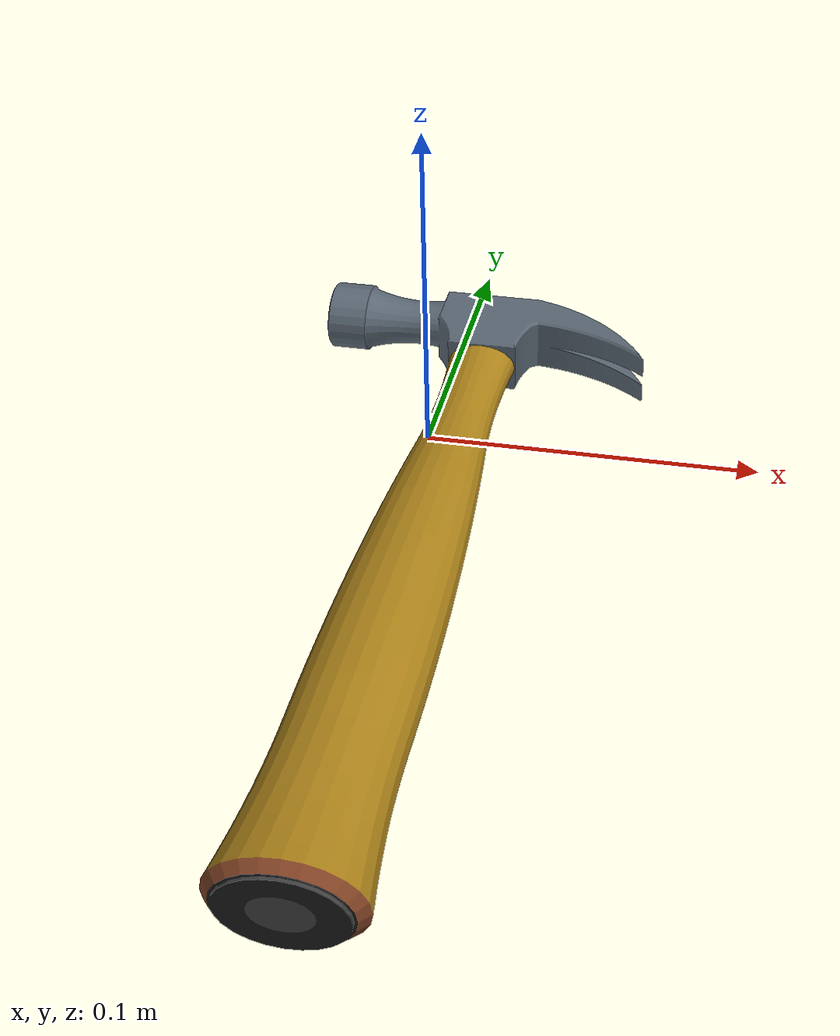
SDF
<?xml version="1.0" ?>
<sdf version="1.5">
  <model name="hammer">
    <static>false</static>
    <link name="link">
      <collision name="collision">
        <geometry>
          <mesh>
            <uri>model://Hammer/meshes/hammer.dae</uri>
            <scale>0.8 0.8 0.8</scale>
          </mesh>
        </geometry>
      </collision>
      <visual name="visual">
        <geometry>
          <mesh>
            <uri>model://Hammer/meshes/hammer.dae</uri>
            <scale>0.8 0.8 0.8</scale>
          </mesh>
        </geometry>
      </visual>
    </link>
  </model>
</sdf>
